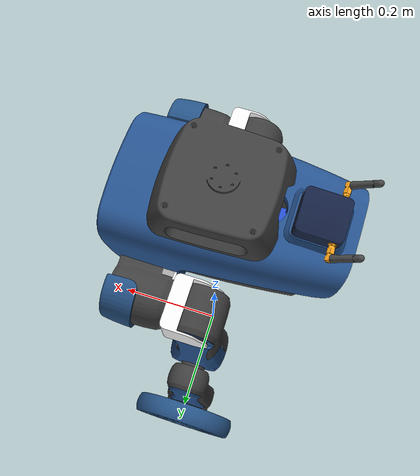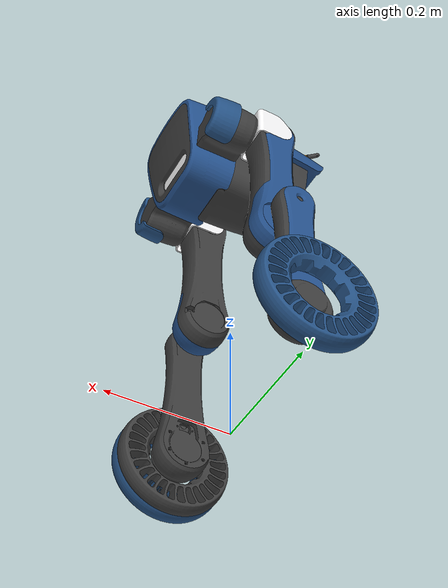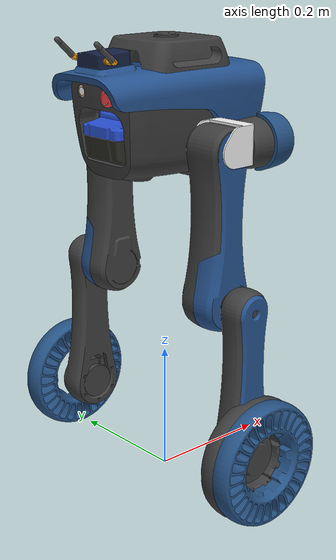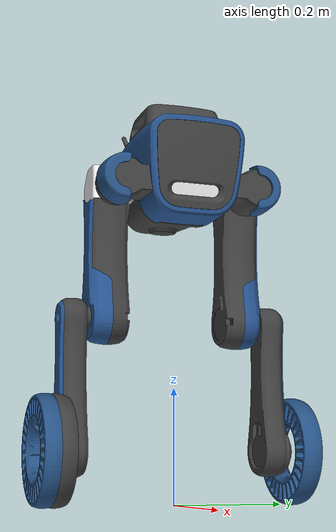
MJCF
<mujoco model="v3">
  <compiler angle="radian" meshdir="meshes/"/>

  <default>
    <default class="pineapple_v3">
        <geom friction="0.4" margin="0.001" condim="1"/>
        <joint damping="0.02" armature="0.004" frictionloss="0.1"/>
        <default class="hip">
            <joint axis="1 0 0" range="-0.698 0.698"/>
            <motor ctrlrange="-27.0 27.0"/>
        </default>
        <default class="thigh">
            <joint axis="0 1 0" range="-0.349 1.919"/>
            <motor ctrlrange="-27.0 27.0"/>
        </default>
        <default class="calf">
            <joint axis="0 1 0" range="-3.314 0.174" damping="0.091" armature="0.0161" frictionloss="0.2"/>
            <motor ctrlrange="-40.0 40.0"/>
        </default>
        <default class="visual">
            <geom type="mesh" contype="0" conaffinity="0" group="2"/>
        </default>
        <default class="collision">
            <geom group="3" type="mesh" rgba="1 0 0 0.3" contype="1" conaffinity="1"/>
            <default class="wheel">
              <geom size="0.077" priority="1" condim="3" friction="0.8 0.02 0.01"/>
              <joint axis="0 1 0" damping="0.0088" armature="0.00176" frictionloss="0.0841"/>
              <motor ctrlrange="-11.0 11.0"/>
            </default>
        </default>
    </default>
  </default>

  <asset>
    <material name="Opaque(255,255,255)" specular="0.5" shininess="0.5" rgba="1.000000 1.000000 1.000000 1.0"/>
    <material name="Opaque(38,83,134)" specular="0.5" shininess="0.5" rgba="0.149020 0.325490 0.525490 1.0"/>
    <material name="Opaque(20,32,65)" specular="0.5" shininess="0.5" rgba="0.078431 0.125490 0.254902 1.0"/>
    <material name="Opaque(255,166,27)" specular="0.5" shininess="0.5" rgba="1.000000 0.650980 0.105882 1.0"/>
    <material name="Opaque(75,75,75)" specular="0.5" shininess="0.5" rgba="0.294118 0.294118 0.294118 1.0"/>
    <material name="Opaque(38,83,143)" specular="0.5" shininess="0.5" rgba="0.149020 0.325490 0.560784 1.0"/>
    <material name="Opaque(247,66,66)" specular="0.5" shininess="0.5" rgba="0.968627 0.258824 0.258824 1.0"/>
    <material name="Opaque(52,52,52)" specular="0.5" shininess="0.5" rgba="0.203922 0.203922 0.203922 1.0"/>
    <material name="Opaque(229,229,229)" specular="0.5" shininess="0.5" rgba="0.898039 0.898039 0.898039 1.0"/>
    <material name="Opaque(245,245,246)" specular="0.5" shininess="0.5" rgba="0.960784 0.960784 0.964706 1.0"/>
    <material name="Opaque(255,174,33)" specular="0.5" shininess="0.5" rgba="1.000000 0.682353 0.129412 1.0"/>
    <material name="Opaque(63,63,63)" specular="0.5" shininess="0.5" rgba="0.247059 0.247059 0.247059 1.0"/>
    <material name="Opaque(44,44,39)" specular="0.5" shininess="0.5" rgba="0.172549 0.172549 0.152941 1.0"/>
    <material name="Opaque(40,79,210)" specular="0.5" shininess="0.5" rgba="0.156863 0.309804 0.823529 1.0"/>
    <mesh file="base_link_0.obj"/>
    <mesh file="base_link_1.obj"/>
    <mesh file="base_link_2.obj"/>
    <mesh file="base_link_3.obj"/>
    <mesh file="base_link_4.obj"/>
    <mesh file="base_link_5.obj"/>
    <mesh file="base_link_7.obj"/>
    <mesh file="base_link_8.obj"/>
    <mesh file="base_link_9.obj"/>
    <mesh file="base_link_10.obj"/>
    <mesh file="base_link_11.obj"/>
    <mesh file="base_link_12.obj"/>
    <mesh file="base_link_13.obj"/>
    <mesh file="hip_thigh_conn_0.obj"/>
    <mesh file="thigh_l_0.obj"/>
    <mesh file="thigh_l_1.obj"/>
    <mesh file="thigh_r_0.obj"/>
    <mesh file="thigh_r_1.obj"/>
    <mesh file="calf_l_0.obj"/>
    <mesh file="calf_l_1.obj"/>
    <mesh file="calf_r_0.obj"/>
    <mesh file="calf_r_1.obj"/>
    <mesh file="wheel_l_0.obj"/>
    <mesh file="wheel_l_1.obj"/>
    <mesh file="wheel_r_0.obj"/>
    <mesh file="wheel_r_1.obj"/>
  </asset>

  <worldbody>
    <body name="base_link" pos="0 0 0.5" childclass="pineapple_v3">
      <freejoint/>
      <site name="imu" pos="0 0 0" />
      <inertial pos="0.00743277 -0.00031002 0.0824108" mass="4.6" fullinertia="0.03542461 0.04154315 0.04752478 -5.543E-05 0.00267146 2.215E-05" />
      <geom mesh="base_link_0" material="Opaque(40,79,210)" class="visual"/>
      <geom mesh="base_link_1" material="Opaque(44,44,39)" class="visual"/>
      <geom mesh="base_link_2" material="Opaque(63,63,63)" class="visual"/>
      <geom mesh="base_link_3" material="Opaque(255,174,33)" class="visual"/>
      <geom mesh="base_link_4" material="Opaque(245,245,246)" class="visual"/>
      <geom mesh="base_link_5" material="Opaque(229,229,229)" class="visual"/>
      <geom mesh="base_link_7" material="Opaque(247,66,66)" class="visual"/>
      <geom mesh="base_link_8" material="Opaque(38,83,143)" class="visual"/>
      <geom mesh="base_link_9" material="Opaque(75,75,75)" class="visual"/>
      <geom mesh="base_link_10" material="Opaque(255,166,27)" class="visual"/>
      <geom mesh="base_link_11" material="Opaque(20,32,65)" class="visual"/>
      <geom mesh="base_link_12" material="Opaque(38,83,134)" class="visual"/>
      <geom mesh="base_link_13" material="Opaque(255,255,255)" class="visual"/>
      <geom size="0.115 0.04 0.06" pos="-0.005 0 0.05" type="box" class='collision'/>
      <geom size="0.145 0.0725 0.02" pos="-0.015 0 0.13" type="box" class='collision'/>
      <geom size="0.065 0.065 0.02" pos="0 0 0.17" type="box" class='collision'/>
      <geom size="0.045 0.025" pos="0.0864 -0.1208 0.043" quat="0.707388 0 0.706825 0" type="cylinder" class='collision'/>
      <geom size="0.045 0.025" pos="0.0864 0.1208 0.043" quat="0.707388 0 0.706825 0" type="cylinder" class='collision'/>
      <body name="hip_thigh_conn_r" pos="0.0303 -0.1208 0.04299">
        <inertial pos="-0.015631 0.00040205 0.014026" quat="0.680466 0.680434 0.192298 -0.192348" mass="0.24" diaginertia="0.000250218 0.000219972 0.00013104"/>
        <geom material="Opaque(245,245,246)" mesh="hip_thigh_conn_0" class="visual"/>
        <joint name="hip_r_joint" pos="0 0 0" axis="1 0 0" range="-1.0472 0.6108"/>
        <body name="thigh_r" pos="-0.04 0.034 0">
          <inertial pos="-5.792e-05 -0.0353756 -0.125518" quat="0.712492 -0.00317887 0.00330608 0.701665" mass="1.52" diaginertia="0.0144268 0.0143577 0.00123335"/>
          <geom mesh="thigh_r_0" material="Opaque(63,63,63)" class="visual"/>
          <geom mesh="thigh_r_1" material="Opaque(38,83,143)" class="visual"/>
          <joint name="thigh_r_joint" pos="0 0 0" axis="0 1 0" range="0 1.74533"/>
          <geom size="0.032 0.03375 0.144" pos="0 -0.0367 -0.114" type="box" class='collision'/>
          <body name="calf_r" pos="0 -0.0741 -0.225">
            <inertial pos="-9.341e-06 -0.0234359 -0.137925" quat="0.706922 -0.00834527 0.00824528 0.707194" mass="0.91" diaginertia="0.00790149 0.0077057 0.000553215"/>
            <geom mesh="calf_r_0" material="Opaque(63,63,63)" class="visual"/>
            <geom mesh="calf_r_1" material="Opaque(38,83,143)" class="visual"/>
            <joint name="calf_r_joint" pos="0 0 0" axis="0 1 0" range="-3.229 0"/>
            <geom size="0.035 0.02225 0.1475" pos="0 -0.0223 -0.1175" type="box" class='collision'/>
            <body name="wheel_r" pos="0 -0.0563 -0.225">
              <inertial pos="0 -0.0101505 0" quat="0.707107 0 0 0.707107" mass="0.49" diaginertia="0.00199485 0.00104471 0.00104471"/>
              <geom mesh="wheel_r_0" material="Opaque(38,83,134)" class="visual"/>
              <geom mesh="wheel_r_1" material="Opaque(63,63,63)" class="visual"/>
              <joint name="wheel_r_joint" pos="0 0 0" axis="0 1 0"/>
              <geom size="0.0925 0.0175" pos="0 -0.0097 0" quat="0.707388 0.706825 0 0" type="cylinder" class='collision'/>
            </body>
          </body>
        </body>
      </body>
      <body name="hip_thigh_conn_l" pos="0.0303 0.1208 0.04299">
        <inertial pos="-0.015631 0.00040205 0.014026" quat="0.680466 0.680434 0.192298 -0.192348" mass="0.24" diaginertia="0.000250218 0.000219972 0.00013104"/>
        <geom material="Opaque(245,245,246)" mesh="hip_thigh_conn_0" class="visual"/>
        <joint name="hip_l_joint" pos="0 0 0" axis="1 0 0" range="-0.6108 1.0472"/>
        <body name="thigh_l" pos="-0.04 -0.034 0">
          <inertial pos="-5.792e-05 0.0353756 -0.125518" quat="0.701665 0.00330608 -0.00317887 0.712492" mass="1.52" diaginertia="0.0144268 0.0143577 0.00123335"/>
          <geom mesh="thigh_l_0" material="Opaque(38,83,143)" class="visual"/>
          <geom mesh="thigh_l_1" material="Opaque(63,63,63)" class="visual"/>
          <joint name="thigh_l_joint" pos="0 0 0" axis="0 1 0" range="0 1.74533"/>
          <geom size="0.032 0.03375 0.144" pos="0 0.0367 -0.114" type="box" class='collision'/>
          <body name="calf_l" pos="0 0.0741 -0.225">
            <inertial pos="-9.341e-06 0.0234359 -0.137925" quat="0.707194 0.00824528 -0.00834527 0.706922" mass="0.91" diaginertia="0.00790149 0.0077057 0.000553215"/>
            <geom mesh="calf_l_0" material="Opaque(63,63,63)" class="visual"/>
            <geom mesh="calf_l_1" material="Opaque(38,83,143)" class="visual"/>
            <joint name="calf_l_joint" pos="0 0 0" axis="0 1 0" range="-3.229 0"/>
            <geom size="0.035 0.02225 0.1475" pos="0 0.0223 -0.1175" type="box" class='collision'/>
            <body name="wheel_l" pos="0 0.0563 -0.225">
              <inertial pos="0 0.0101505 0" quat="0.707107 0 0 0.707107" mass="0.49" diaginertia="0.00199485 0.00104471 0.00104471"/>
              <geom mesh="wheel_l_0" material="Opaque(38,83,134)" class="visual"/>
              <geom mesh="wheel_l_1" material="Opaque(63,63,63)" class="visual"/>
              <joint name="wheel_l_joint" pos="0 0 0" axis="0 1 0"/>
              <geom size="0.0925 0.0175" pos="0 0.0097 0" quat="0.707388 0.706825 0 0" type="cylinder" class='collision'/>
            </body>
          </body>
        </body>
      </body>
    </body>
  </worldbody>

   <actuator>
      <motor class="hip" name="L_hip" joint="hip_l_joint" />
      <motor class="thigh" name="L_thigh" joint="thigh_l_joint" />
      <motor class="calf" name="L_calf" joint="calf_l_joint" />
      <motor class="wheel" name="L_wheel" joint="wheel_l_joint" />

      <motor class="hip" name="R_hip" joint="hip_r_joint" />
      <motor class="thigh" name="R_thigh" joint="thigh_r_joint" />
      <motor class="calf" name="R_calf" joint="calf_r_joint" />
      <motor class="wheel" name="R_wheel" joint="wheel_r_joint" />
  </actuator>

</mujoco>
